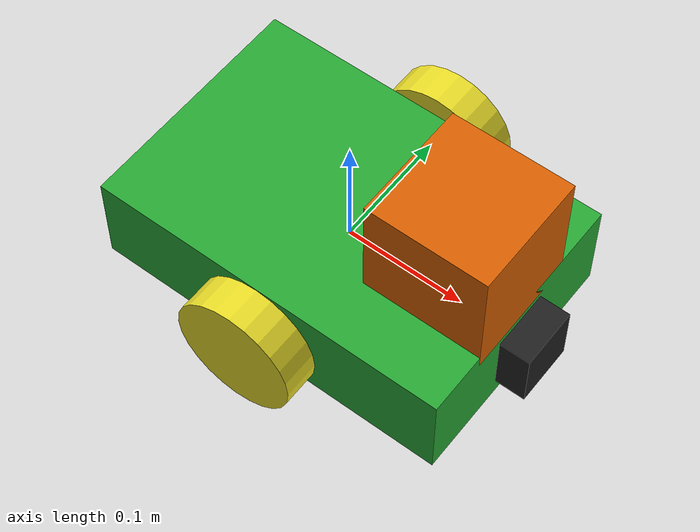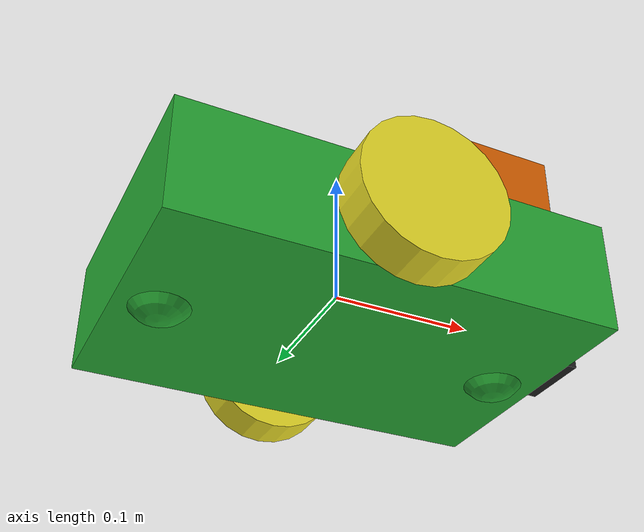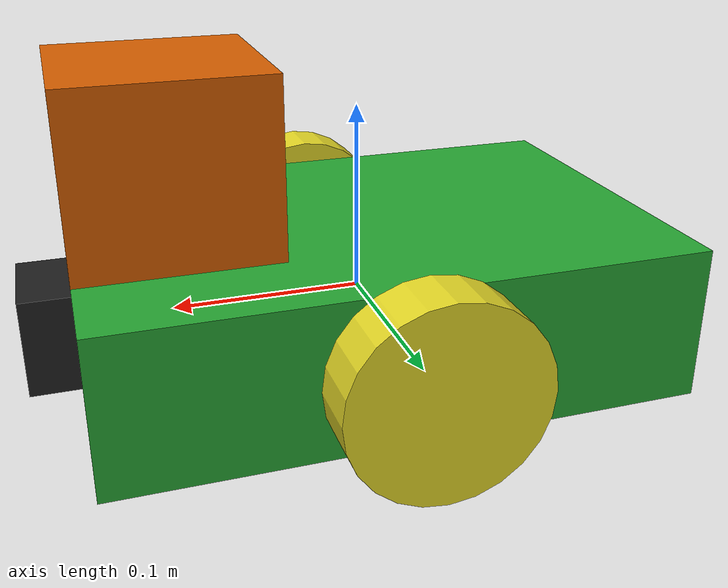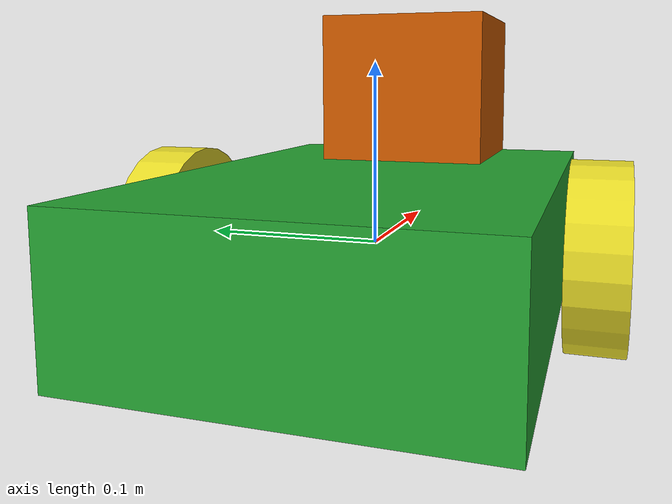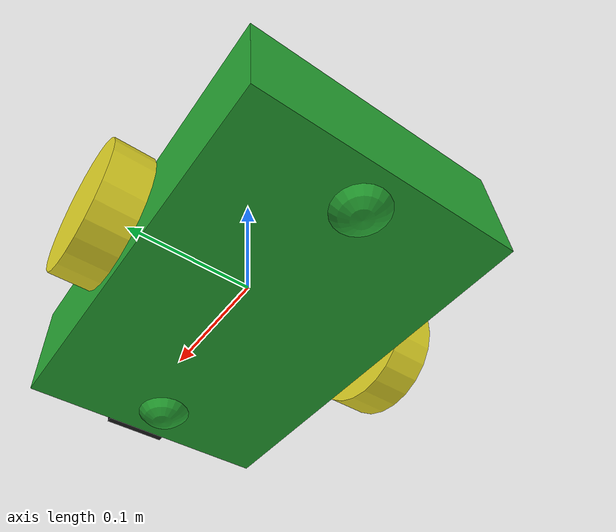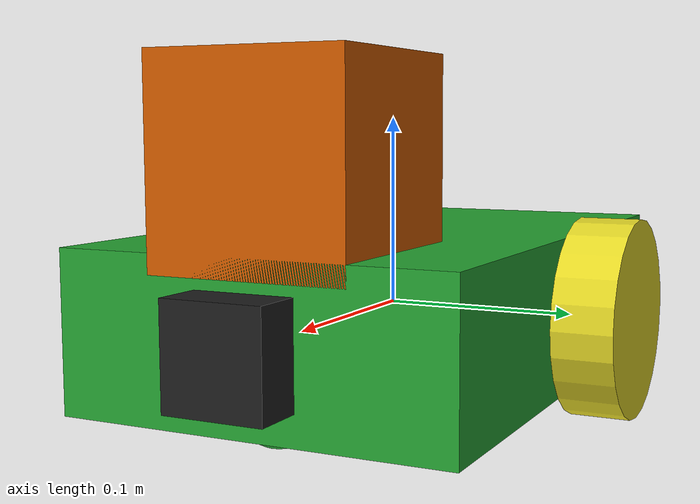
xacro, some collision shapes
<?xml version='1.0'?>

<robot name="my_robot" xmlns:xacro="http://www.ros.org/wiki/xacro">
  <xacro:include filename="$(find my_robot)/urdf/my_robot.gazebo" />

  <link name="robot_footprint"></link>

  <joint name="robot_footprint_joint" type="fixed">
    <origin xyz="0 0 0" rpy="0 0 0" />
    <parent link="robot_footprint"/>
    <child link="chassis" />
  </joint>

  <link name='chassis'>
    <pose>0 0 0.1 0 0 0</pose>

    <inertial>
      <mass value="10.0"/>
      <origin xyz="0.0 0 0" rpy=" 0 0 0"/>
      <inertia
          ixx="0.1" ixy="0" ixz="0"
          iyy="0.1" iyz="0"
          izz="0.1"
      />
    </inertial>

    <collision name='collision'>
      <origin xyz="0 0 0" rpy=" 0 0 0"/>
      <geometry>
        <box size=".3 .2 .08"/>
      </geometry>
    </collision>

    <visual name='chassis_visual'>
      <origin xyz="0 0 0" rpy=" 0 0 0"/>
      <geometry>
        <box size=".3 .2 .08"/>
      </geometry>
    </visual>

    <collision name='back_caster_collision'>
      <origin xyz="-0.12 0 -0.025" rpy=" 0 0 0"/>
      <geometry>
        <sphere radius="0.025"/>
      </geometry>
    </collision>

    <visual name='back_caster_visual'>
      <origin xyz="-0.12 0 -0.025" rpy=" 0 0 0"/>
      <geometry>
        <sphere radius="0.025"/>
      </geometry>
    </visual>

    <collision name='front_caster_collision'>
      <origin xyz="0.12 0 -0.025" rpy=" 0 0 0"/>
      <geometry>
        <sphere radius="0.025"/>
      </geometry>
    </collision>

    <visual name='front_caster_visual'>
      <origin xyz="0.12 0 -0.025" rpy=" 0 0 0"/>
      <geometry>
        <sphere radius="0.025"/>
      </geometry>
    </visual>

  </link>

  <link name='left_wheel'>
    <pose>0 0 0.1 0 0 0</pose>
    <inertial>
      <mass value="3.0"/>
      <origin xyz="0.0 0 0" rpy=" 0 0 0"/>
      <inertia
          ixx="0.1" ixy="0" ixz="0"
          iyy="0.1" iyz="0"
          izz="0.1"
      />
    </inertial>

    <visual name='left_wheel_visual'>
      <origin xyz="0 0 0" rpy="0 1.5707 1.5707"/>
      <geometry>
        <cylinder length="0.03" radius="0.05"/>
      </geometry>
    </visual>

    <collision name='left_wheel_collision'>
      <origin xyz="0 0 0" rpy="0 1.5707 1.5707"/>
      <geometry>
        <cylinder length="0.03" radius="0.05"/>
      </geometry>
    </collision>
  </link>

  <link name='right_wheel'>
    <pose>0 0 0.1 0 0 0</pose>
    <inertial>
      <mass value="3.0"/>
      <origin xyz="0.0 0 0" rpy=" 0 0 0"/>
      <inertia
          ixx="0.1" ixy="0" ixz="0"
          iyy="0.1" iyz="0"
          izz="0.1"
      />
    </inertial>

    <visual name='right_wheel_visual'>
      <origin xyz="0 0 0" rpy="0 1.5707 1.5707"/>
      <geometry>
        <cylinder length="0.03" radius="0.05"/>
      </geometry>
    </visual>

    <collision name='right_wheel_collision'>
      <origin xyz="0 0 0" rpy="0 1.5707 1.5707"/>
      <geometry>
        <cylinder length="0.03" radius="0.05"/>
      </geometry>
    </collision>
  </link>

  <joint type="continuous" name="left_wheel_hinge">
    <origin xyz="0 0.12 0" rpy="0 0 0"/>
    <child link="left_wheel"/>
    <parent link="chassis"/>
    <axis xyz="0 1 0" rpy="0 0 0"/>
    <limit effort="10000" velocity="1000"/>
    <dynamics damping="1.0" friction="1.0"/>
  </joint>

  <joint type="continuous" name="right_wheel_hinge">
    <origin xyz="0 -0.12 0" rpy="0 0 0"/>
    <child link="right_wheel"/>
    <parent link="chassis"/>
    <axis xyz="0 1 0" rpy="0 0 0"/>
    <limit effort="10000" velocity="1000"/>
    <dynamics damping="1.0" friction="1.0"/>
  </joint>

  <link name='camera'>
    <pose>0 0 0.1 0 0 0</pose>
    <inertial>
      <mass value="0.1"/>
      <origin xyz="0 0 0" rpy=" 0 0 0"/>
      <inertia
          ixx="1e-6" ixy="0" ixz="0"
          iyy="1e-6" iyz="0"
          izz="1e-6"
      />
    </inertial>

    <collision name='camera_collision'>
      <origin xyz="0 0 0" rpy=" 0 0 0"/>
      <geometry>
        <box size=".05 .05 .05"/>
      </geometry>
    </collision>

    <visual name='camera_visual'>
      <origin xyz="0 0 0" rpy=" 0 0 0"/>
      <geometry>
        <box size=".05 .05 .05"/>
      </geometry>
    </visual>
  </link>

  <joint type="fixed" name="camera_joint">
    <origin xyz="0.15 0 0" rpy="0 0 0"/>
    <child link="camera"/>
    <parent link="chassis"/>
    <axis xyz="0 1 0" rpy="0 0 0"/>
  </joint>

  <link name='hokuyo'>
    <pose>0 0 0.1 0 0 0</pose>
    <inertial>
      <mass value="1e-5"/>
      <origin xyz="0 0 0" rpy=" 0 0 0"/>
      <inertia
          ixx="1e-6" ixy="0" ixz="0"
          iyy="1e-6" iyz="0"
          izz="1e-6"
      />
    </inertial>

    <collision name='hokuyo_collision'>
      <origin xyz="0 0 0" rpy=" 0 0 0"/>
      <geometry>
        <box size=".1 .1 .1"/>
      </geometry>
    </collision>

    <visual name='hokuyo_visual'>
      <origin xyz="0 0 0" rpy=" 0 0 0"/>
      <geometry>
        <mesh filename="package://my_robot/meshes/hokuyo.dae"/>
      </geometry>
    </visual>
  </link>

  <joint type="fixed" name="hokuyo_joint">
    <origin xyz="0.1 0 0.08" rpy="0 0 0"/>
    <child link="hokuyo"/>
    <parent link="chassis"/>
    <axis xyz="0 1 0" rpy="0 0 0"/>
  </joint>
  <!-- New joint for the RGB-D camera -->
  <joint name="camera_optical_joint" type="fixed">
  	<origin xyz="0 0 0" rpy="-1.5707 0 -1.5707"/>
  	<parent link="camera"/>
  	<child link="camera_link_optical"/>
  </joint>

  <link name="camera_link_optical">
  </link>

  <gazebo reference="left_wheel">
    <material>Gazebo/Yellow</material>
  </gazebo>

  <gazebo reference="right_wheel">
    <material>Gazebo/Yellow</material>
  </gazebo>

  <gazebo reference="chassis">
    <material>Gazebo/Green</material>
  </gazebo>

  <gazebo reference="camera">
    <material>Gazebo/Black</material>
  </gazebo>

</robot>
